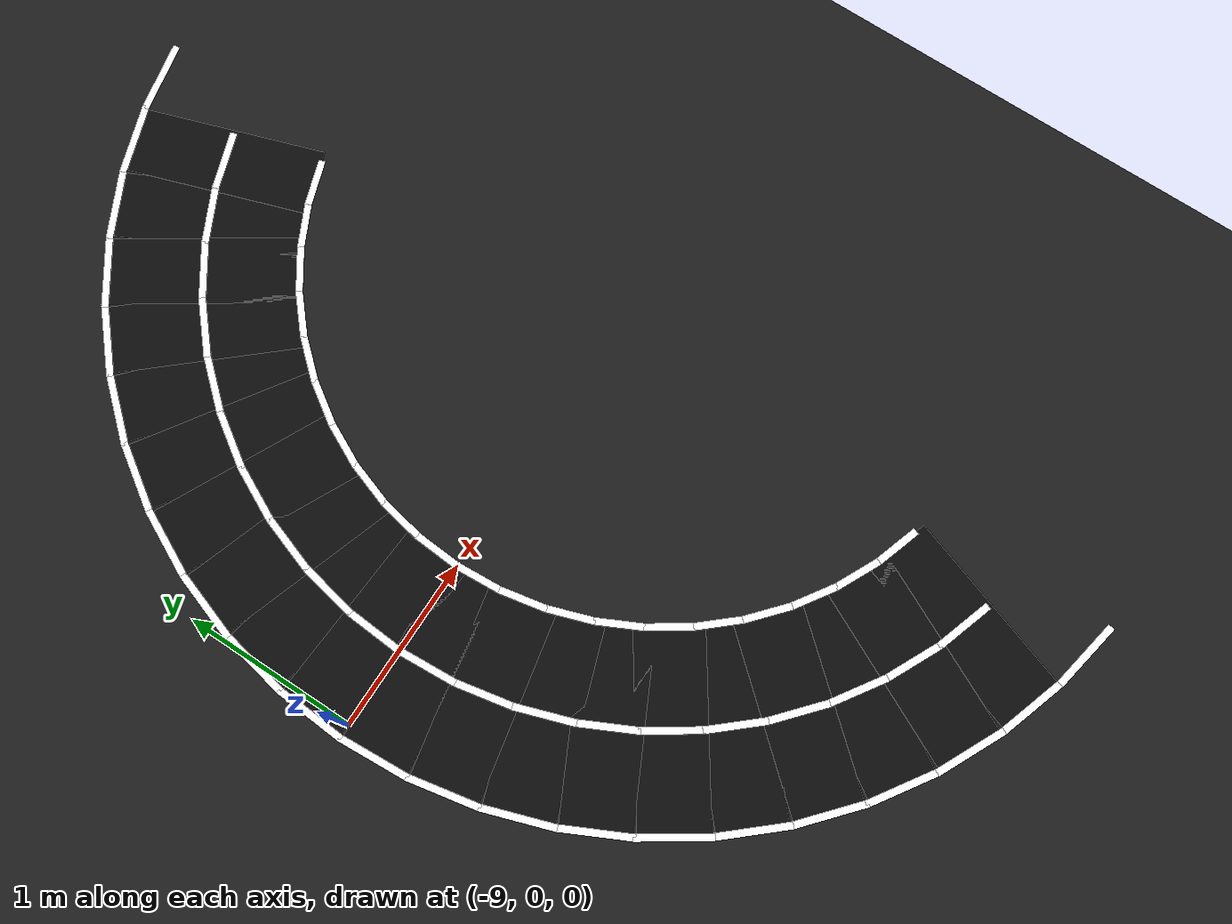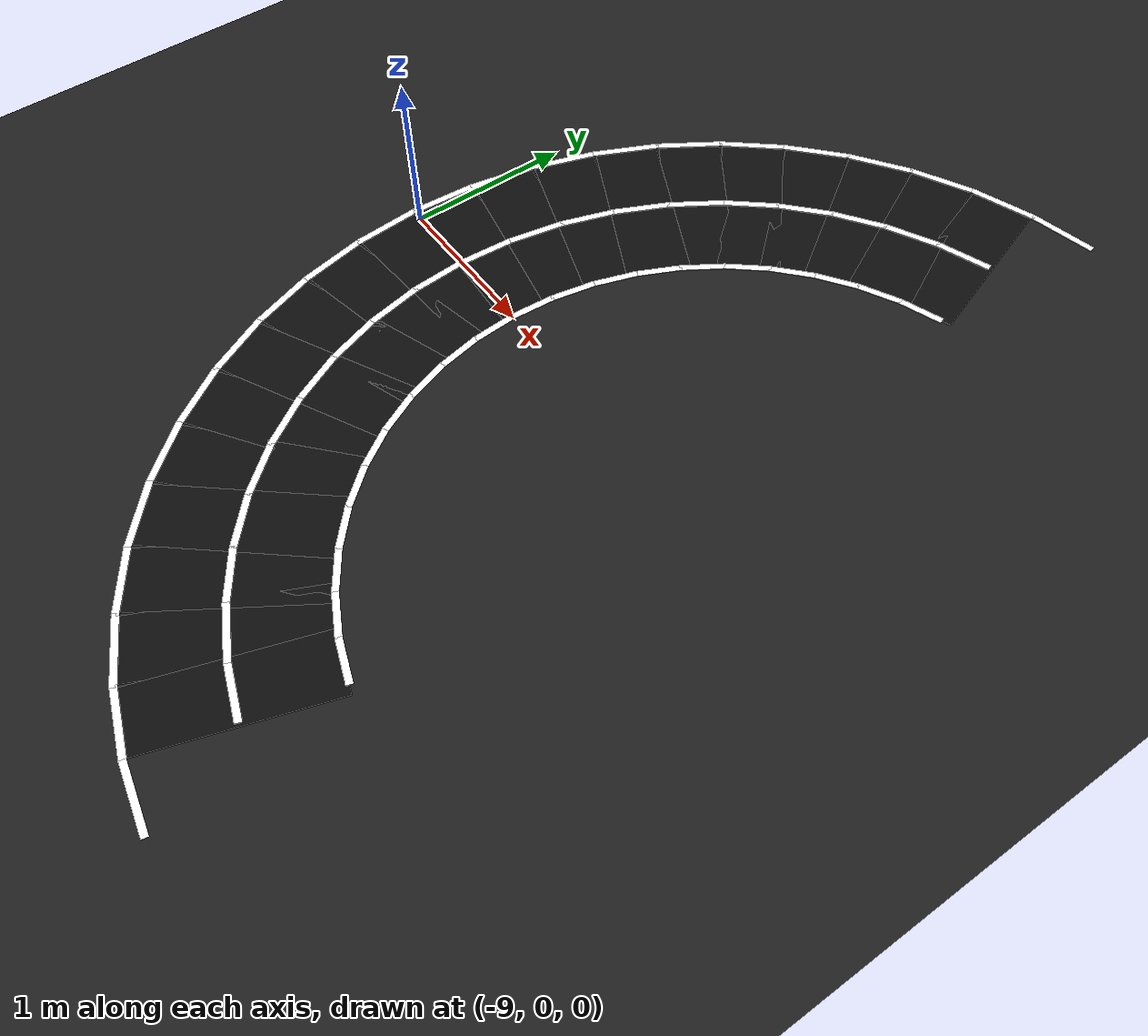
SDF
<sdf version="1.6">
 <world name="oval_lane_world">
  <model name="ground_plane">
   <static>true</static>
   <link name="link">
    <collision name="collision">
     <geometry><plane><normal>0 0 1</normal><size>200 200</size></plane></geometry>
     <surface><friction><ode><mu>1.0</mu><mu2>1.0</mu2></ode></friction></surface>
    </collision>
    <visual name="visual">
     <geometry><plane><normal>0 0 1</normal><size>200 200</size></plane></geometry>
     <material><ambient>0.10 0.10 0.10 1</ambient><diffuse>0.12 0.12 0.12 1</diffuse></material>
    </visual>
   </link>
  </model>
  <model name="cl_l_2_1">
   <static>true</static>
   <pose>-6.59854 3.00905 0.00700 0.0 0.0 3.33794</pose>
   <link name="link">
    <visual name="visual">
     <geometry><box><size>0.41737 0.04000 0.00400</size></box></geometry>
     <material>
      <ambient>1.000 1.000 1.000 1</ambient>
      <diffuse>1.000 1.000 1.000 1</diffuse>
      <specular>0.05 0.05 0.05 1</specular>
     </material>
    </visual>
   </link>
  </model>
  <model name="road_l_2">
   <static>true</static>
   <pose>-6.81453 2.39952 0.00250 0.0 0.0 3.46884</pose>
   <link name="link">
    <visual name="visual">
     <geometry><box><size>0.38284 1.06800 0.00500</size></box></geometry>
     <material>
      <ambient>0.030 0.030 0.030 1</ambient>
      <diffuse>0.050 0.050 0.050 1</diffuse>
      <specular>0.05 0.05 0.05 1</specular>
     </material>
    </visual>
   </link>
  </model>
  <model name="cl_l_0_2">
   <static>true</static>
   <pose>-6.64288 1.89386 0.00700 0.0 0.0 3.46884</pose>
   <link name="link">
    <visual name="visual">
     <geometry><box><size>0.27208 0.04000 0.00400</size></box></geometry>
     <material>
      <ambient>1.000 1.000 1.000 1</ambient>
      <diffuse>1.000 1.000 1.000 1</diffuse>
      <specular>0.05 0.05 0.05 1</specular>
     </material>
    </visual>
   </link>
  </model>
  <model name="cl_l_1_2">
   <static>true</static>
   <pose>-6.81453 2.39952 0.00700 0.0 0.0 3.46884</pose>
   <link name="link">
    <visual name="visual">
     <geometry><box><size>0.34472 0.04000 0.00400</size></box></geometry>
     <material>
      <ambient>1.000 1.000 1.000 1</ambient>
      <diffuse>1.000 1.000 1.000 1</diffuse>
      <specular>0.05 0.05 0.05 1</specular>
     </material>
    </visual>
   </link>
  </model>
  <model name="cl_l_2_2">
   <static>true</static>
   <pose>-6.98618 2.90518 0.00700 0.0 0.0 3.46884</pose>
   <link name="link">
    <visual name="visual">
     <geometry><box><size>0.41737 0.04000 0.00400</size></box></geometry>
     <material>
      <ambient>1.000 1.000 1.000 1</ambient>
      <diffuse>1.000 1.000 1.000 1</diffuse>
      <specular>0.05 0.05 0.05 1</specular>
     </material>
    </visual>
   </link>
  </model>
  <model name="road_l_3">
   <static>true</static>
   <pose>-7.12076 2.27268 0.00250 0.0 0.0 3.59974</pose>
   <link name="link">
    <visual name="visual">
     <geometry><box><size>0.38284 1.06800 0.00500</size></box></geometry>
     <material>
      <ambient>0.030 0.030 0.030 1</ambient>
      <diffuse>0.050 0.050 0.050 1</diffuse>
      <specular>0.05 0.05 0.05 1</specular>
     </material>
    </visual>
   </link>
  </model>
  <model name="cl_l_0_3">
   <static>true</static>
   <pose>-6.88458 1.79375 0.00700 0.0 0.0 3.59974</pose>
   <link name="link">
    <visual name="visual">
     <geometry><box><size>0.27208 0.04000 0.00400</size></box></geometry>
     <material>
      <ambient>1.000 1.000 1.000 1</ambient>
      <diffuse>1.000 1.000 1.000 1</diffuse>
      <specular>0.05 0.05 0.05 1</specular>
     </material>
    </visual>
   </link>
  </model>
  <model name="cl_l_1_3">
   <static>true</static>
   <pose>-7.12076 2.27268 0.00700 0.0 0.0 3.59974</pose>
   <link name="link">
    <visual name="visual">
     <geometry><box><size>0.34472 0.04000 0.00400</size></box></geometry>
     <material>
      <ambient>1.000 1.000 1.000 1</ambient>
      <diffuse>1.000 1.000 1.000 1</diffuse>
      <specular>0.05 0.05 0.05 1</specular>
     </material>
    </visual>
   </link>
  </model>
  <model name="cl_l_2_3">
   <static>true</static>
   <pose>-7.35694 2.75161 0.00700 0.0 0.0 3.59974</pose>
   <link name="link">
    <visual name="visual">
     <geometry><box><size>0.41737 0.04000 0.00400</size></box></geometry>
     <material>
      <ambient>1.000 1.000 1.000 1</ambient>
      <diffuse>1.000 1.000 1.000 1</diffuse>
      <specular>0.05 0.05 0.05 1</specular>
     </material>
    </visual>
   </link>
  </model>
  <model name="road_l_4">
   <static>true</static>
   <pose>-7.40781 2.10694 0.00250 0.0 0.0 3.73064</pose>
   <link name="link">
    <visual name="visual">
     <geometry><box><size>0.38284 1.06800 0.00500</size></box></geometry>
     <material>
      <ambient>0.030 0.030 0.030 1</ambient>
      <diffuse>0.050 0.050 0.050 1</diffuse>
      <specular>0.05 0.05 0.05 1</specular>
     </material>
    </visual>
   </link>
  </model>
  <model name="cl_l_0_4">
   <static>true</static>
   <pose>-7.11114 1.66294 0.00700 0.0 0.0 3.73064</pose>
   <link name="link">
    <visual name="visual">
     <geometry><box><size>0.27208 0.04000 0.00400</size></box></geometry>
     <material>
      <ambient>1.000 1.000 1.000 1</ambient>
      <diffuse>1.000 1.000 1.000 1</diffuse>
      <specular>0.05 0.05 0.05 1</specular>
     </material>
    </visual>
   </link>
  </model>
  <model name="cl_l_1_4">
   <static>true</static>
   <pose>-7.40781 2.10694 0.00700 0.0 0.0 3.73064</pose>
   <link name="link">
    <visual name="visual">
     <geometry><box><size>0.34472 0.04000 0.00400</size></box></geometry>
     <material>
      <ambient>1.000 1.000 1.000 1</ambient>
      <diffuse>1.000 1.000 1.000 1</diffuse>
      <specular>0.05 0.05 0.05 1</specular>
     </material>
    </visual>
   </link>
  </model>
  <model name="cl_l_2_4">
   <static>true</static>
   <pose>-7.70449 2.55095 0.00700 0.0 0.0 3.73064</pose>
   <link name="link">
    <visual name="visual">
     <geometry><box><size>0.41737 0.04000 0.00400</size></box></geometry>
     <material>
      <ambient>1.000 1.000 1.000 1</ambient>
      <diffuse>1.000 1.000 1.000 1</diffuse>
      <specular>0.05 0.05 0.05 1</specular>
     </material>
    </visual>
   </link>
  </model>
  <model name="road_l_5">
   <static>true</static>
   <pose>-7.67078 1.90516 0.00250 0.0 0.0 3.86154</pose>
   <link name="link">
    <visual name="visual">
     <geometry><box><size>0.38284 1.06800 0.00500</size></box></geometry>
     <material>
      <ambient>0.030 0.030 0.030 1</ambient>
      <diffuse>0.050 0.050 0.050 1</diffuse>
      <specular>0.05 0.05 0.05 1</specular>
     </material>
    </visual>
   </link>
  </model>
  <model name="cl_l_0_5">
   <static>true</static>
   <pose>-7.31869 1.50368 0.00700 0.0 0.0 3.86154</pose>
   <link name="link">
    <visual name="visual">
     <geometry><box><size>0.27208 0.04000 0.00400</size></box></geometry>
     <material>
      <ambient>1.000 1.000 1.000 1</ambient>
      <diffuse>1.000 1.000 1.000 1</diffuse>
      <specular>0.05 0.05 0.05 1</specular>
     </material>
    </visual>
   </link>
  </model>
  <model name="cl_l_1_5">
   <static>true</static>
   <pose>-7.67078 1.90516 0.00700 0.0 0.0 3.86154</pose>
   <link name="link">
    <visual name="visual">
     <geometry><box><size>0.34472 0.04000 0.00400</size></box></geometry>
     <material>
      <ambient>1.000 1.000 1.000 1</ambient>
      <diffuse>1.000 1.000 1.000 1</diffuse>
      <specular>0.05 0.05 0.05 1</specular>
     </material>
    </visual>
   </link>
  </model>
  <model name="cl_l_2_5">
   <static>true</static>
   <pose>-8.02287 2.30664 0.00700 0.0 0.0 3.86154</pose>
   <link name="link">
    <visual name="visual">
     <geometry><box><size>0.41737 0.04000 0.00400</size></box></geometry>
     <material>
      <ambient>1.000 1.000 1.000 1</ambient>
      <diffuse>1.000 1.000 1.000 1</diffuse>
      <specular>0.05 0.05 0.05 1</specular>
     </material>
    </visual>
   </link>
  </model>
  <model name="road_l_6">
   <static>true</static>
   <pose>-7.90516 1.67078 0.00250 0.0 0.0 3.99244</pose>
   <link name="link">
    <visual name="visual">
     <geometry><box><size>0.38284 1.06800 0.00500</size></box></geometry>
     <material>
      <ambient>0.030 0.030 0.030 1</ambient>
      <diffuse>0.050 0.050 0.050 1</diffuse>
      <specular>0.05 0.05 0.05 1</specular>
     </material>
    </visual>
   </link>
  </model>
  <model name="cl_l_0_6">
   <static>true</static>
   <pose>-7.50368 1.31869 0.00700 0.0 0.0 3.99244</pose>
   <link name="link">
    <visual name="visual">
     <geometry><box><size>0.27208 0.04000 0.00400</size></box></geometry>
     <material>
      <ambient>1.000 1.000 1.000 1</ambient>
      <diffuse>1.000 1.000 1.000 1</diffuse>
      <specular>0.05 0.05 0.05 1</specular>
     </material>
    </visual>
   </link>
  </model>
  <model name="cl_l_1_6">
   <static>true</static>
   <pose>-7.90516 1.67078 0.00700 0.0 0.0 3.99244</pose>
   <link name="link">
    <visual name="visual">
     <geometry><box><size>0.34472 0.04000 0.00400</size></box></geometry>
     <material>
      <ambient>1.000 1.000 1.000 1</ambient>
      <diffuse>1.000 1.000 1.000 1</diffuse>
      <specular>0.05 0.05 0.05 1</specular>
     </material>
    </visual>
   </link>
  </model>
  <model name="cl_l_2_6">
   <static>true</static>
   <pose>-8.30664 2.02287 0.00700 0.0 0.0 3.99244</pose>
   <link name="link">
    <visual name="visual">
     <geometry><box><size>0.41737 0.04000 0.00400</size></box></geometry>
     <material>
      <ambient>1.000 1.000 1.000 1</ambient>
      <diffuse>1.000 1.000 1.000 1</diffuse>
      <specular>0.05 0.05 0.05 1</specular>
     </material>
    </visual>
   </link>
  </model>
  <model name="road_l_7">
   <static>true</static>
   <pose>-8.10694 1.40781 0.00250 0.0 0.0 4.12334</pose>
   <link name="link">
    <visual name="visual">
     <geometry><box><size>0.38284 1.06800 0.00500</size></box></geometry>
     <material>
      <ambient>0.030 0.030 0.030 1</ambient>
      <diffuse>0.050 0.050 0.050 1</diffuse>
      <specular>0.05 0.05 0.05 1</specular>
     </material>
    </visual>
   </link>
  </model>
  <model name="cl_l_0_7">
   <static>true</static>
   <pose>-7.66294 1.11114 0.00700 0.0 0.0 4.12334</pose>
   <link name="link">
    <visual name="visual">
     <geometry><box><size>0.27208 0.04000 0.00400</size></box></geometry>
     <material>
      <ambient>1.000 1.000 1.000 1</ambient>
      <diffuse>1.000 1.000 1.000 1</diffuse>
      <specular>0.05 0.05 0.05 1</specular>
     </material>
    </visual>
   </link>
  </model>
  <model name="cl_l_1_7">
   <static>true</static>
   <pose>-8.10694 1.40781 0.00700 0.0 0.0 4.12334</pose>
   <link name="link">
    <visual name="visual">
     <geometry><box><size>0.34472 0.04000 0.00400</size></box></geometry>
     <material>
      <ambient>1.000 1.000 1.000 1</ambient>
      <diffuse>1.000 1.000 1.000 1</diffuse>
      <specular>0.05 0.05 0.05 1</specular>
     </material>
    </visual>
   </link>
  </model>
  <model name="cl_l_2_7">
   <static>true</static>
   <pose>-8.55095 1.70449 0.00700 0.0 0.0 4.12334</pose>
   <link name="link">
    <visual name="visual">
     <geometry><box><size>0.41737 0.04000 0.00400</size></box></geometry>
     <material>
      <ambient>1.000 1.000 1.000 1</ambient>
      <diffuse>1.000 1.000 1.000 1</diffuse>
      <specular>0.05 0.05 0.05 1</specular>
     </material>
    </visual>
   </link>
  </model>
  <model name="road_l_8">
   <static>true</static>
   <pose>-8.27268 1.12076 0.00250 0.0 0.0 4.25424</pose>
   <link name="link">
    <visual name="visual">
     <geometry><box><size>0.38284 1.06800 0.00500</size></box></geometry>
     <material>
      <ambient>0.030 0.030 0.030 1</ambient>
      <diffuse>0.050 0.050 0.050 1</diffuse>
      <specular>0.05 0.05 0.05 1</specular>
     </material>
    </visual>
   </link>
  </model>
  <model name="cl_l_0_8">
   <static>true</static>
   <pose>-7.79375 0.88458 0.00700 0.0 0.0 4.25424</pose>
   <link name="link">
    <visual name="visual">
     <geometry><box><size>0.27208 0.04000 0.00400</size></box></geometry>
     <material>
      <ambient>1.000 1.000 1.000 1</ambient>
      <diffuse>1.000 1.000 1.000 1</diffuse>
      <specular>0.05 0.05 0.05 1</specular>
     </material>
    </visual>
   </link>
  </model>
  <model name="cl_l_1_8">
   <static>true</static>
   <pose>-8.27268 1.12076 0.00700 0.0 0.0 4.25424</pose>
   <link name="link">
    <visual name="visual">
     <geometry><box><size>0.34472 0.04000 0.00400</size></box></geometry>
     <material>
      <ambient>1.000 1.000 1.000 1</ambient>
      <diffuse>1.000 1.000 1.000 1</diffuse>
      <specular>0.05 0.05 0.05 1</specular>
     </material>
    </visual>
   </link>
  </model>
  <model name="cl_l_2_8">
   <static>true</static>
   <pose>-8.75161 1.35694 0.00700 0.0 0.0 4.25424</pose>
   <link name="link">
    <visual name="visual">
     <geometry><box><size>0.41737 0.04000 0.00400</size></box></geometry>
     <material>
      <ambient>1.000 1.000 1.000 1</ambient>
      <diffuse>1.000 1.000 1.000 1</diffuse>
      <specular>0.05 0.05 0.05 1</specular>
     </material>
    </visual>
   </link>
  </model>
  <model name="road_l_9">
   <static>true</static>
   <pose>-8.39952 0.81453 0.00250 0.0 0.0 4.38514</pose>
   <link name="link">
    <visual name="visual">
     <geometry><box><size>0.38284 1.06800 0.00500</size></box></geometry>
     <material>
      <ambient>0.030 0.030 0.030 1</ambient>
      <diffuse>0.050 0.050 0.050 1</diffuse>
      <specular>0.05 0.05 0.05 1</specular>
     </material>
    </visual>
   </link>
  </model>
  <model name="cl_l_0_9">
   <static>true</static>
   <pose>-7.89386 0.64288 0.00700 0.0 0.0 4.38514</pose>
   <link name="link">
    <visual name="visual">
     <geometry><box><size>0.27208 0.04000 0.00400</size></box></geometry>
     <material>
      <ambient>1.000 1.000 1.000 1</ambient>
      <diffuse>1.000 1.000 1.000 1</diffuse>
      <specular>0.05 0.05 0.05 1</specular>
     </material>
    </visual>
   </link>
  </model>
  <model name="cl_l_1_9">
   <static>true</static>
   <pose>-8.39952 0.81453 0.00700 0.0 0.0 4.38514</pose>
   <link name="link">
    <visual name="visual">
     <geometry><box><size>0.34472 0.04000 0.00400</size></box></geometry>
     <material>
      <ambient>1.000 1.000 1.000 1</ambient>
      <diffuse>1.000 1.000 1.000 1</diffuse>
      <specular>0.05 0.05 0.05 1</specular>
     </material>
    </visual>
   </link>
  </model>
  <model name="cl_l_2_9">
   <static>true</static>
   <pose>-8.90518 0.98618 0.00700 0.0 0.0 4.38514</pose>
   <link name="link">
    <visual name="visual">
     <geometry><box><size>0.41737 0.04000 0.00400</size></box></geometry>
     <material>
      <ambient>1.000 1.000 1.000 1</ambient>
      <diffuse>1.000 1.000 1.000 1</diffuse>
      <specular>0.05 0.05 0.05 1</specular>
     </material>
    </visual>
   </link>
  </model>
  <model name="road_l_10">
   <static>true</static>
   <pose>-8.48531 0.49436 0.00250 0.0 0.0 4.51604</pose>
   <link name="link">
    <visual name="visual">
     <geometry><box><size>0.38284 1.06800 0.00500</size></box></geometry>
     <material>
      <ambient>0.030 0.030 0.030 1</ambient>
      <diffuse>0.050 0.050 0.050 1</diffuse>
      <specular>0.05 0.05 0.05 1</specular>
     </material>
    </visual>
   </link>
  </model>
  <model name="cl_l_0_10">
   <static>true</static>
   <pose>-7.96157 0.39018 0.00700 0.0 0.0 4.51604</pose>
   <link name="link">
    <visual name="visual">
     <geometry><box><size>0.27208 0.04000 0.00400</size></box></geometry>
     <material>
      <ambient>1.000 1.000 1.000 1</ambient>
      <diffuse>1.000 1.000 1.000 1</diffuse>
      <specular>0.05 0.05 0.05 1</specular>
     </material>
    </visual>
   </link>
  </model>
  <model name="cl_l_1_10">
   <static>true</static>
   <pose>-8.48531 0.49436 0.00700 0.0 0.0 4.51604</pose>
   <link name="link">
    <visual name="visual">
     <geometry><box><size>0.34472 0.04000 0.00400</size></box></geometry>
     <material>
      <ambient>1.000 1.000 1.000 1</ambient>
      <diffuse>1.000 1.000 1.000 1</diffuse>
      <specular>0.05 0.05 0.05 1</specular>
     </material>
    </visual>
   </link>
  </model>
  <model name="cl_l_2_10">
   <static>true</static>
   <pose>-9.00905 0.59854 0.00700 0.0 0.0 4.51604</pose>
   <link name="link">
    <visual name="visual">
     <geometry><box><size>0.41737 0.04000 0.00400</size></box></geometry>
     <material>
      <ambient>1.000 1.000 1.000 1</ambient>
      <diffuse>1.000 1.000 1.000 1</diffuse>
      <specular>0.05 0.05 0.05 1</specular>
     </material>
    </visual>
   </link>
  </model>
  <model name="road_l_11">
   <static>true</static>
   <pose>-8.52857 0.16573 0.00250 0.0 0.0 4.64694</pose>
   <link name="link">
    <visual name="visual">
     <geometry><box><size>0.38284 1.06800 0.00500</size></box></geometry>
     <material>
      <ambient>0.030 0.030 0.030 1</ambient>
      <diffuse>0.050 0.050 0.050 1</diffuse>
      <specular>0.05 0.05 0.05 1</specular>
     </material>
    </visual>
   </link>
  </model>
  <model name="cl_l_0_11">
   <static>true</static>
   <pose>-7.99572 0.13081 0.00700 0.0 0.0 4.64694</pose>
   <link name="link">
    <visual name="visual">
     <geometry><box><size>0.27208 0.04000 0.00400</size></box></geometry>
     <material>
      <ambient>1.000 1.000 1.000 1</ambient>
      <diffuse>1.000 1.000 1.000 1</diffuse>
      <specular>0.05 0.05 0.05 1</specular>
     </material>
    </visual>
   </link>
  </model>
  <model name="cl_l_1_11">
   <static>true</static>
   <pose>-8.52857 0.16573 0.00700 0.0 0.0 4.64694</pose>
   <link name="link">
    <visual name="visual">
     <geometry><box><size>0.34472 0.04000 0.00400</size></box></geometry>
     <material>
      <ambient>1.000 1.000 1.000 1</ambient>
      <diffuse>1.000 1.000 1.000 1</diffuse>
      <specular>0.05 0.05 0.05 1</specular>
     </material>
    </visual>
   </link>
  </model>
  <model name="cl_l_2_11">
   <static>true</static>
   <pose>-9.06143 0.20066 0.00700 0.0 0.0 4.64694</pose>
   <link name="link">
    <visual name="visual">
     <geometry><box><size>0.41737 0.04000 0.00400</size></box></geometry>
     <material>
      <ambient>1.000 1.000 1.000 1</ambient>
      <diffuse>1.000 1.000 1.000 1</diffuse>
      <specular>0.05 0.05 0.05 1</specular>
     </material>
    </visual>
   </link>
  </model>
  <model name="road_l_12">
   <static>true</static>
   <pose>-8.52857 -0.16573 0.00250 0.0 0.0 4.77784</pose>
   <link name="link">
    <visual name="visual">
     <geometry><box><size>0.38284 1.06800 0.00500</size></box></geometry>
     <material>
      <ambient>0.030 0.030 0.030 1</ambient>
      <diffuse>0.050 0.050 0.050 1</diffuse>
      <specular>0.05 0.05 0.05 1</specular>
     </material>
    </visual>
   </link>
  </model>
  <model name="cl_l_0_12">
   <static>true</static>
   <pose>-7.99572 -0.13081 0.00700 0.0 0.0 4.77784</pose>
   <link name="link">
    <visual name="visual">
     <geometry><box><size>0.27208 0.04000 0.00400</size></box></geometry>
     <material>
      <ambient>1.000 1.000 1.000 1</ambient>
      <diffuse>1.000 1.000 1.000 1</diffuse>
      <specular>0.05 0.05 0.05 1</specular>
     </material>
    </visual>
   </link>
  </model>
  <model name="cl_l_1_12">
   <static>true</static>
   <pose>-8.52857 -0.16573 0.00700 0.0 0.0 4.77784</pose>
   <link name="link">
    <visual name="visual">
     <geometry><box><size>0.34472 0.04000 0.00400</size></box></geometry>
     <material>
      <ambient>1.000 1.000 1.000 1</ambient>
      <diffuse>1.000 1.000 1.000 1</diffuse>
      <specular>0.05 0.05 0.05 1</specular>
     </material>
    </visual>
   </link>
  </model>
  <model name="cl_l_2_12">
   <static>true</static>
   <pose>-9.06143 -0.20066 0.00700 0.0 0.0 4.77784</pose>
   <link name="link">
    <visual name="visual">
     <geometry><box><size>0.41737 0.04000 0.00400</size></box></geometry>
     <material>
      <ambient>1.000 1.000 1.000 1</ambient>
      <diffuse>1.000 1.000 1.000 1</diffuse>
      <specular>0.05 0.05 0.05 1</specular>
     </material>
    </visual>
   </link>
  </model>
  <model name="road_l_13">
   <static>true</static>
   <pose>-8.48531 -0.49436 0.00250 0.0 0.0 4.90874</pose>
   <link name="link">
    <visual name="visual">
     <geometry><box><size>0.38284 1.06800 0.00500</size></box></geometry>
     <material>
      <ambient>0.030 0.030 0.030 1</ambient>
      <diffuse>0.050 0.050 0.050 1</diffuse>
      <specular>0.05 0.05 0.05 1</specular>
     </material>
    </visual>
   </link>
  </model>
  <model name="cl_l_0_13">
   <static>true</static>
   <pose>-7.96157 -0.39018 0.00700 0.0 0.0 4.90874</pose>
   <link name="link">
    <visual name="visual">
     <geometry><box><size>0.27208 0.04000 0.00400</size></box></geometry>
     <material>
      <ambient>1.000 1.000 1.000 1</ambient>
      <diffuse>1.000 1.000 1.000 1</diffuse>
      <specular>0.05 0.05 0.05 1</specular>
     </material>
    </visual>
   </link>
  </model>
  <model name="cl_l_1_13">
   <static>true</static>
   <pose>-8.48531 -0.49436 0.00700 0.0 0.0 4.90874</pose>
   <link name="link">
    <visual name="visual">
     <geometry><box><size>0.34472 0.04000 0.00400</size></box></geometry>
     <material>
      <ambient>1.000 1.000 1.000 1</ambient>
      <diffuse>1.000 1.000 1.000 1</diffuse>
      <specular>0.05 0.05 0.05 1</specular>
     </material>
    </visual>
   </link>
  </model>
  <model name="cl_l_2_13">
   <static>true</static>
   <pose>-9.00905 -0.59854 0.00700 0.0 0.0 4.90874</pose>
   <link name="link">
    <visual name="visual">
     <geometry><box><size>0.41737 0.04000 0.00400</size></box></geometry>
     <material>
      <ambient>1.000 1.000 1.000 1</ambient>
      <diffuse>1.000 1.000 1.000 1</diffuse>
      <specular>0.05 0.05 0.05 1</specular>
     </material>
    </visual>
   </link>
  </model>
  <model name="road_l_14">
   <static>true</static>
   <pose>-8.39952 -0.81453 0.00250 0.0 0.0 5.03964</pose>
   <link name="link">
    <visual name="visual">
     <geometry><box><size>0.38284 1.06800 0.00500</size></box></geometry>
     <material>
      <ambient>0.030 0.030 0.030 1</ambient>
      <diffuse>0.050 0.050 0.050 1</diffuse>
      <specular>0.05 0.05 0.05 1</specular>
     </material>
    </visual>
   </link>
  </model>
  <model name="cl_l_0_14">
   <static>true</static>
   <pose>-7.89386 -0.64288 0.00700 0.0 0.0 5.03964</pose>
   <link name="link">
    <visual name="visual">
     <geometry><box><size>0.27208 0.04000 0.00400</size></box></geometry>
     <material>
      <ambient>1.000 1.000 1.000 1</ambient>
      <diffuse>1.000 1.000 1.000 1</diffuse>
      <specular>0.05 0.05 0.05 1</specular>
     </material>
    </visual>
   </link>
  </model>
  <model name="cl_l_1_14">
   <static>true</static>
   <pose>-8.39952 -0.81453 0.00700 0.0 0.0 5.03964</pose>
   <link name="link">
    <visual name="visual">
     <geometry><box><size>0.34472 0.04000 0.00400</size></box></geometry>
     <material>
      <ambient>1.000 1.000 1.000 1</ambient>
      <diffuse>1.000 1.000 1.000 1</diffuse>
      <specular>0.05 0.05 0.05 1</specular>
     </material>
    </visual>
   </link>
  </model>
  <model name="cl_l_2_14">
   <static>true</static>
   <pose>-8.90518 -0.98618 0.00700 0.0 0.0 5.03964</pose>
   <link name="link">
    <visual name="visual">
     <geometry><box><size>0.41737 0.04000 0.00400</size></box></geometry>
     <material>
      <ambient>1.000 1.000 1.000 1</ambient>
      <diffuse>1.000 1.000 1.000 1</diffuse>
      <specular>0.05 0.05 0.05 1</specular>
     </material>
    </visual>
   </link>
  </model>
  <model name="road_l_15">
   <static>true</static>
   <pose>-8.27268 -1.12076 0.00250 0.0 0.0 5.17054</pose>
   <link name="link">
    <visual name="visual">
     <geometry><box><size>0.38284 1.06800 0.00500</size></box></geometry>
     <material>
      <ambient>0.030 0.030 0.030 1</ambient>
      <diffuse>0.050 0.050 0.050 1</diffuse>
      <specular>0.05 0.05 0.05 1</specular>
     </material>
    </visual>
   </link>
  </model>
  <model name="cl_l_0_15">
   <static>true</static>
   <pose>-7.79375 -0.88458 0.00700 0.0 0.0 5.17054</pose>
   <link name="link">
    <visual name="visual">
     <geometry><box><size>0.27208 0.04000 0.00400</size></box></geometry>
     <material>
      <ambient>1.000 1.000 1.000 1</ambient>
      <diffuse>1.000 1.000 1.000 1</diffuse>
      <specular>0.05 0.05 0.05 1</specular>
     </material>
    </visual>
   </link>
  </model>
  <model name="cl_l_1_15">
   <static>true</static>
   <pose>-8.27268 -1.12076 0.00700 0.0 0.0 5.17054</pose>
   <link name="link">
    <visual name="visual">
     <geometry><box><size>0.34472 0.04000 0.00400</size></box></geometry>
     <material>
      <ambient>1.000 1.000 1.000 1</ambient>
      <diffuse>1.000 1.000 1.000 1</diffuse>
      <specular>0.05 0.05 0.05 1</specular>
     </material>
    </visual>
   </link>
  </model>
  <model name="cl_l_2_15">
   <static>true</static>
   <pose>-8.75161 -1.35694 0.00700 0.0 0.0 5.17054</pose>
   <link name="link">
    <visual name="visual">
     <geometry><box><size>0.41737 0.04000 0.00400</size></box></geometry>
     <material>
      <ambient>1.000 1.000 1.000 1</ambient>
      <diffuse>1.000 1.000 1.000 1</diffuse>
      <specular>0.05 0.05 0.05 1</specular>
     </material>
    </visual>
   </link>
  </model>
  <model name="road_l_16">
   <static>true</static>
   <pose>-8.10694 -1.40781 0.00250 0.0 0.0 5.30144</pose>
   <link name="link">
    <visual name="visual">
     <geometry><box><size>0.38284 1.06800 0.00500</size></box></geometry>
     <material>
      <ambient>0.030 0.030 0.030 1</ambient>
      <diffuse>0.050 0.050 0.050 1</diffuse>
      <specular>0.05 0.05 0.05 1</specular>
     </material>
    </visual>
   </link>
  </model>
  <model name="cl_l_0_16">
   <static>true</static>
   <pose>-7.66294 -1.11114 0.00700 0.0 0.0 5.30144</pose>
   <link name="link">
    <visual name="visual">
     <geometry><box><size>0.27208 0.04000 0.00400</size></box></geometry>
     <material>
      <ambient>1.000 1.000 1.000 1</ambient>
      <diffuse>1.000 1.000 1.000 1</diffuse>
      <specular>0.05 0.05 0.05 1</specular>
     </material>
    </visual>
   </link>
  </model>
  <model name="cl_l_1_16">
   <static>true</static>
   <pose>-8.10694 -1.40781 0.00700 0.0 0.0 5.30144</pose>
   <link name="link">
    <visual name="visual">
     <geometry><box><size>0.34472 0.04000 0.00400</size></box></geometry>
     <material>
      <ambient>1.000 1.000 1.000 1</ambient>
      <diffuse>1.000 1.000 1.000 1</diffuse>
      <specular>0.05 0.05 0.05 1</specular>
     </material>
    </visual>
   </link>
  </model>
  <model name="cl_l_2_16">
   <static>true</static>
   <pose>-8.55095 -1.70449 0.00700 0.0 0.0 5.30144</pose>
   <link name="link">
    <visual name="visual">
     <geometry><box><size>0.41737 0.04000 0.00400</size></box></geometry>
     <material>
      <ambient>1.000 1.000 1.000 1</ambient>
      <diffuse>1.000 1.000 1.000 1</diffuse>
      <specular>0.05 0.05 0.05 1</specular>
     </material>
    </visual>
   </link>
  </model>
  <model name="road_l_17">
   <static>true</static>
   <pose>-7.90516 -1.67078 0.00250 0.0 0.0 5.43234</pose>
   <link name="link">
    <visual name="visual">
     <geometry><box><size>0.38284 1.06800 0.00500</size></box></geometry>
     <material>
      <ambient>0.030 0.030 0.030 1</ambient>
      <diffuse>0.050 0.050 0.050 1</diffuse>
      <specular>0.05 0.05 0.05 1</specular>
     </material>
    </visual>
   </link>
  </model>
  <model name="cl_l_0_17">
   <static>true</static>
   <pose>-7.50368 -1.31869 0.00700 0.0 0.0 5.43234</pose>
   <link name="link">
    <visual name="visual">
     <geometry><box><size>0.27208 0.04000 0.00400</size></box></geometry>
     <material>
      <ambient>1.000 1.000 1.000 1</ambient>
      <diffuse>1.000 1.000 1.000 1</diffuse>
      <specular>0.05 0.05 0.05 1</specular>
     </material>
    </visual>
   </link>
  </model>
  <model name="cl_l_1_17">
   <static>true</static>
   <pose>-7.90516 -1.67078 0.00700 0.0 0.0 5.43234</pose>
   <link name="link">
    <visual name="visual">
     <geometry><box><size>0.34472 0.04000 0.00400</size></box></geometry>
     <material>
      <ambient>1.000 1.000 1.000 1</ambient>
      <diffuse>1.000 1.000 1.000 1</diffuse>
      <specular>0.05 0.05 0.05 1</specular>
     </material>
    </visual>
   </link>
  </model>
  <model name="cl_l_2_17">
   <static>true</static>
   <pose>-8.30664 -2.02287 0.00700 0.0 0.0 5.43234</pose>
   <link name="link">
    <visual name="visual">
     <geometry><box><size>0.41737 0.04000 0.00400</size></box></geometry>
     <material>
      <ambient>1.000 1.000 1.000 1</ambient>
      <diffuse>1.000 1.000 1.000 1</diffuse>
      <specular>0.05 0.05 0.05 1</specular>
     </material>
    </visual>
   </link>
  </model>
  <model name="road_l_18">
   <static>true</static>
   <pose>-7.67078 -1.90516 0.00250 0.0 0.0 5.56324</pose>
   <link name="link">
    <visual name="visual">
     <geometry><box><size>0.38284 1.06800 0.00500</size></box></geometry>
     <material>
      <ambient>0.030 0.030 0.030 1</ambient>
      <diffuse>0.050 0.050 0.050 1</diffuse>
      <specular>0.05 0.05 0.05 1</specular>
     </material>
    </visual>
   </link>
  </model>
  <model name="cl_l_0_18">
   <static>true</static>
   <pose>-7.31869 -1.50368 0.00700 0.0 0.0 5.56324</pose>
   <link name="link">
    <visual name="visual">
     <geometry><box><size>0.27208 0.04000 0.00400</size></box></geometry>
     <material>
      <ambient>1.000 1.000 1.000 1</ambient>
      <diffuse>1.000 1.000 1.000 1</diffuse>
      <specular>0.05 0.05 0.05 1</specular>
     </material>
    </visual>
   </link>
  </model>
  <model name="cl_l_1_18">
   <static>true</static>
   <pose>-7.67078 -1.90516 0.00700 0.0 0.0 5.56324</pose>
   <link name="link">
    <visual name="visual">
     <geometry><box><size>0.34472 0.04000 0.00400</size></box></geometry>
     <material>
      <ambient>1.000 1.000 1.000 1</ambient>
      <diffuse>1.000 1.000 1.000 1</diffuse>
      <specular>0.05 0.05 0.05 1</specular>
     </material>
    </visual>
   </link>
  </model>
  <model name="cl_l_2_18">
   <static>true</static>
   <pose>-8.02287 -2.30664 0.00700 0.0 0.0 5.56324</pose>
   <link name="link">
    <visual name="visual">
     <geometry><box><size>0.41737 0.04000 0.00400</size></box></geometry>
     <material>
      <ambient>1.000 1.000 1.000 1</ambient>
      <diffuse>1.000 1.000 1.000 1</diffuse>
      <specular>0.05 0.05 0.05 1</specular>
     </material>
    </visual>
   </link>
  </model>
  <model name="road_l_19">
   <static>true</static>
   <pose>-7.40781 -2.10694 0.00250 0.0 0.0 5.69414</pose>
   <link name="link">
    <visual name="visual">
     <geometry><box><size>0.38284 1.06800 0.00500</size></box></geometry>
     <material>
      <ambient>0.030 0.030 0.030 1</ambient>
      <diffuse>0.050 0.050 0.050 1</diffuse>
      <specular>0.05 0.05 0.05 1</specular>
     </material>
    </visual>
   </link>
  </model>
  <model name="cl_l_0_19">
   <static>true</static>
   <pose>-7.11114 -1.66294 0.00700 0.0 0.0 5.69414</pose>
   <link name="link">
    <visual name="visual">
     <geometry><box><size>0.27208 0.04000 0.00400</size></box></geometry>
     <material>
      <ambient>1.000 1.000 1.000 1</ambient>
      <diffuse>1.000 1.000 1.000 1</diffuse>
      <specular>0.05 0.05 0.05 1</specular>
     </material>
    </visual>
   </link>
  </model>
  <model name="cl_l_1_19">
   <static>true</static>
   <pose>-7.40781 -2.10694 0.00700 0.0 0.0 5.69414</pose>
   <link name="link">
    <visual name="visual">
     <geometry><box><size>0.34472 0.04000 0.00400</size></box></geometry>
     <material>
      <ambient>1.000 1.000 1.000 1</ambient>
      <diffuse>1.000 1.000 1.000 1</diffuse>
      <specular>0.05 0.05 0.05 1</specular>
     </material>
    </visual>
   </link>
  </model>
  <model name="cl_l_2_19">
   <static>true</static>
   <pose>-7.70449 -2.55095 0.00700 0.0 0.0 5.69414</pose>
   <link name="link">
    <visual name="visual">
     <geometry><box><size>0.41737 0.04000 0.00400</size></box></geometry>
     <material>
      <ambient>1.000 1.000 1.000 1</ambient>
      <diffuse>1.000 1.000 1.000 1</diffuse>
      <specular>0.05 0.05 0.05 1</specular>
     </material>
    </visual>
   </link>
  </model>
  <model name="road_l_20">
   <static>true</static>
   <pose>-7.12076 -2.27268 0.00250 0.0 0.0 5.82504</pose>
   <link name="link">
    <visual name="visual">
     <geometry><box><size>0.38284 1.06800 0.00500</size></box></geometry>
     <material>
      <ambient>0.030 0.030 0.030 1</ambient>
      <diffuse>0.050 0.050 0.050 1</diffuse>
      <specular>0.05 0.05 0.05 1</specular>
     </material>
    </visual>
   </link>
  </model>
  <model name="cl_l_0_20">
   <static>true</static>
   <pose>-6.88458 -1.79375 0.00700 0.0 0.0 5.82504</pose>
   <link name="link">
    <visual name="visual">
     <geometry><box><size>0.27208 0.04000 0.00400</size></box></geometry>
     <material>
      <ambient>1.000 1.000 1.000 1</ambient>
      <diffuse>1.000 1.000 1.000 1</diffuse>
      <specular>0.05 0.05 0.05 1</specular>
     </material>
    </visual>
   </link>
  </model>
  <model name="cl_l_1_20">
   <static>true</static>
   <pose>-7.12076 -2.27268 0.00700 0.0 0.0 5.82504</pose>
   <link name="link">
    <visual name="visual">
     <geometry><box><size>0.34472 0.04000 0.00400</size></box></geometry>
     <material>
      <ambient>1.000 1.000 1.000 1</ambient>
      <diffuse>1.000 1.000 1.000 1</diffuse>
      <specular>0.05 0.05 0.05 1</specular>
     </material>
    </visual>
   </link>
  </model>
  <model name="cl_l_2_20">
   <static>true</static>
   <pose>-7.35694 -2.75161 0.00700 0.0 0.0 5.82504</pose>
   <link name="link">
    <visual name="visual">
     <geometry><box><size>0.41737 0.04000 0.00400</size></box></geometry>
     <material>
      <ambient>1.000 1.000 1.000 1</ambient>
      <diffuse>1.000 1.000 1.000 1</diffuse>
      <specular>0.05 0.05 0.05 1</specular>
     </material>
    </visual>
   </link>
  </model>
  <model name="road_l_21">
   <static>true</static>
   <pose>-6.81453 -2.39952 0.00250 0.0 0.0 5.95594</pose>
   <link name="link">
    <visual name="visual">
     <geometry><box><size>0.38284 1.06800 0.00500</size></box></geometry>
     <material>
      <ambient>0.030 0.030 0.030 1</ambient>
      <diffuse>0.050 0.050 0.050 1</diffuse>
      <specular>0.05 0.05 0.05 1</specular>
     </material>
    </visual>
   </link>
  </model>
  <model name="cl_l_0_21">
   <static>true</static>
   <pose>-6.64288 -1.89386 0.00700 0.0 0.0 5.95594</pose>
   <link name="link">
    <visual name="visual">
     <geometry><box><size>0.27208 0.04000 0.00400</size></box></geometry>
     <material>
      <ambient>1.000 1.000 1.000 1</ambient>
      <diffuse>1.000 1.000 1.000 1</diffuse>
      <specular>0.05 0.05 0.05 1</specular>
     </material>
    </visual>
   </link>
  </model>
  <model name="cl_l_1_21">
   <static>true</static>
   <pose>-6.81453 -2.39952 0.00700 0.0 0.0 5.95594</pose>
   <link name="link">
    <visual name="visual">
     <geometry><box><size>0.34472 0.04000 0.00400</size></box></geometry>
     <material>
      <ambient>1.000 1.000 1.000 1</ambient>
      <diffuse>1.000 1.000 1.000 1</diffuse>
      <specular>0.05 0.05 0.05 1</specular>
     </material>
    </visual>
   </link>
  </model>
  <model name="cl_l_2_21">
   <static>true</static>
   <pose>-6.98618 -2.90518 0.00700 0.0 0.0 5.95594</pose>
   <link name="link">
    <visual name="visual">
     <geometry><box><size>0.41737 0.04000 0.00400</size></box></geometry>
     <material>
      <ambient>1.000 1.000 1.000 1</ambient>
      <diffuse>1.000 1.000 1.000 1</diffuse>
      <specular>0.05 0.05 0.05 1</specular>
     </material>
    </visual>
   </link>
  </model>
  <model name="cl_l_2_22">
   <static>true</static>
   <pose>-6.59854 -3.00905 0.00700 0.0 0.0 6.08684</pose>
   <link name="link">
    <visual name="visual">
     <geometry><box><size>0.41737 0.04000 0.00400</size></box></geometry>
     <material>
      <ambient>1.000 1.000 1.000 1</ambient>
      <diffuse>1.000 1.000 1.000 1</diffuse>
      <specular>0.05 0.05 0.05 1</specular>
     </material>
    </visual>
   </link>
  </model>
 </world>
</sdf>
